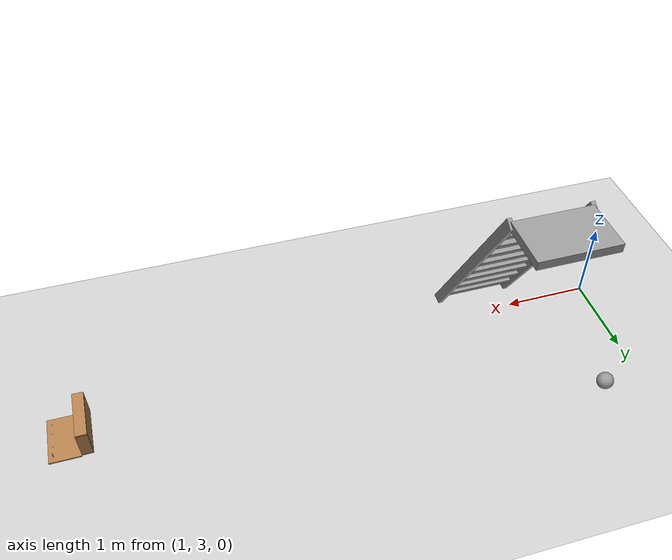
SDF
<sdf version="1.6">
 <world name="default">
  <model name="ground_plane">
   <static>1</static>
   <link name="link">
    <collision name="collision">
     <geometry><plane><normal>0 0 1</normal><size>100 100</size></plane></geometry>
     <surface>
      <contact><collide_bitmask>65535</collide_bitmask></contact>
      <friction><ode><mu>100</mu><mu2>50</mu2></ode></friction>
     </surface>
    </collision>
    <visual name="visual">
     <cast_shadows>0</cast_shadows>
     <geometry><plane><normal>0 0 1</normal><size>100 100</size></plane></geometry>
     <material>
      <script><uri>file://media/materials/scripts/gazebo.material</uri><name>Gazebo/Grey</name></script>
     </material>
    </visual>
   </link>
  </model>
  <model name="my_ball">
   <link name="link_0">
    <inertial>
     <mass>1</mass>
     <inertia><ixx>0.1</ixx><ixy>0</ixy><ixz>0</ixz><iyy>0.1</iyy><iyz>0</iyz><izz>0.1</izz></inertia>
    </inertial>
    <visual name="visual">
     <geometry><sphere><radius>0.1</radius></sphere></geometry>
     <material>
      <lighting>1</lighting>
      <script><uri>file://media/materials/scripts/gazebo.material</uri><name>Gazebo/Grey</name></script>
      <shader type="pixel"><normal_map>__default__</normal_map></shader>
      <ambient>1 1 1 1</ambient>
      <diffuse>1 1 1 1</diffuse>
      <specular>1 1 1 1</specular>
      <emissive>1 1 1 1</emissive>
     </material>
    </visual>
    <collision name="collision">
     <geometry><sphere><radius>0.1</radius></sphere></geometry>
     <surface>
      <friction>
       <ode><mu>1</mu><mu2>1</mu2><fdir1>0 0 0</fdir1><slip1>0</slip1><slip2>0</slip2></ode>
       <torsional>
        <coefficient>1</coefficient>
        <patch_radius>0</patch_radius>
        <surface_radius>0</surface_radius>
        <use_patch_radius>1</use_patch_radius>
        <ode><slip>0</slip></ode>
       </torsional>
      </friction>
      <bounce><restitution_coefficient>0</restitution_coefficient><threshold>1e+06</threshold></bounce>
      <contact>
       <collide_without_contact>0</collide_without_contact>
       <collide_without_contact_bitmask>1</collide_without_contact_bitmask>
       <collide_bitmask>1</collide_bitmask>
       <ode>
        <soft_cfm>0</soft_cfm>
        <soft_erp>0.2</soft_erp>
        <kp>1e+13</kp>
        <kd>1</kd>
        <max_vel>0.01</max_vel>
        <min_depth>0</min_depth>
       </ode>
       <bullet>
        <split_impulse>1</split_impulse>
        <split_impulse_penetration_threshold>-0.01</split_impulse_penetration_threshold>
        <soft_cfm>0</soft_cfm>
        <soft_erp>0.2</soft_erp>
        <kp>1e+13</kp>
        <kd>1</kd>
       </bullet>
      </contact>
     </surface>
    </collision>
   </link>
   <static>0</static>
   <pose>1.48948 4.52073 0.1 0 -0 0</pose>
  </model>
  <model name="wooden_case_metal_peg">
   <link name="wooden_case::base">
    <pose>0 0 0.024 0 -0 0</pose>
    <inertial>
     <pose>-0.022184 0 0.171592 0 -0 0</pose>
     <mass>3.96264</mass>
     <inertia>
      <ixx>0.213536</ixx>
      <ixy>0</ixy>
      <ixz>0.000779377</ixz>
      <iyy>0.0708943</iyy>
      <iyz>0</iyz>
      <izz>0.154604</izz>
     </inertia>
    </inertial>
    <collision name="collision_back">
     <pose>-0.053975 0 0.1778 0 -0 0</pose>
     <geometry><box><size>0.01905 0.5461 0.3175</size></box></geometry>
     <surface>
      <contact>
       <poissons_ratio>0.347</poissons_ratio>
       <elastic_modulus>8.8e+09</elastic_modulus>
       <ode><kp>100000</kp><kd>100</kd><max_vel>100</max_vel><min_depth>0.001</min_depth></ode>
      </contact>
      <friction>
       <torsional>
        <coefficient>1</coefficient>
        <use_patch_radius>0</use_patch_radius>
        <surface_radius>0.01</surface_radius>
       </torsional>
      </friction>
     </surface>
    </collision>
    <visual name="visual_back">
     <pose>-0.053975 0 0.1778 0 -0 0</pose>
     <geometry><box><size>0.01905 0.5461 0.3175</size></box></geometry>
     <material>
      <script><uri>file://media/materials/scripts/gazebo.material</uri><name>Gazebo/Wood</name></script>
     </material>
    </visual>
    <collision name="collision_bottom">
     <pose>0 0 0.009525 0 -0 0</pose>
     <geometry><box><size>0.127 0.5842 0.01905</size></box></geometry>
     <surface>
      <contact>
       <poissons_ratio>0.347</poissons_ratio>
       <elastic_modulus>8.8e+09</elastic_modulus>
       <ode><kp>100000</kp><kd>100</kd><max_vel>100</max_vel><min_depth>0.001</min_depth></ode>
      </contact>
      <friction>
       <torsional>
        <coefficient>1</coefficient>
        <use_patch_radius>0</use_patch_radius>
        <surface_radius>0.01</surface_radius>
       </torsional>
      </friction>
     </surface>
    </collision>
    <visual name="visual_bottom">
     <pose>0 0 0.009525 0 -0 0</pose>
     <geometry><box><size>0.127 0.5842 0.01905</size></box></geometry>
     <material>
      <script><uri>file://media/materials/scripts/gazebo.material</uri><name>Gazebo/Wood</name></script>
     </material>
    </visual>
    <collision name="collision_top">
     <pose>0 0 0.346075 0 -0 0</pose>
     <geometry><box><size>0.127 0.5842 0.01905</size></box></geometry>
     <surface>
      <contact>
       <poissons_ratio>0.347</poissons_ratio>
       <elastic_modulus>8.8e+09</elastic_modulus>
       <ode><kp>100000</kp><kd>100</kd><max_vel>100</max_vel><min_depth>0.001</min_depth></ode>
      </contact>
      <friction>
       <torsional>
        <coefficient>1</coefficient>
        <use_patch_radius>0</use_patch_radius>
        <surface_radius>0.01</surface_radius>
       </torsional>
      </friction>
     </surface>
    </collision>
    <visual name="visual_top">
     <pose>0 0 0.346075 0 -0 0</pose>
     <geometry><box><size>0.127 0.5842 0.01905</size></box></geometry>
     <material>
      <script><uri>file://media/materials/scripts/gazebo.material</uri><name>Gazebo/Wood</name></script>
     </material>
    </visual>
    <collision name="collision_left">
     <pose>0 -0.282575 0.1778 0 -0 0</pose>
     <geometry><box><size>0.127 0.01905 0.3175</size></box></geometry>
     <surface>
      <contact>
       <poissons_ratio>0.347</poissons_ratio>
       <elastic_modulus>8.8e+09</elastic_modulus>
       <ode><kp>100000</kp><kd>100</kd><max_vel>100</max_vel><min_depth>0.001</min_depth></ode>
      </contact>
      <friction>
       <torsional>
        <coefficient>1</coefficient>
        <use_patch_radius>0</use_patch_radius>
        <surface_radius>0.01</surface_radius>
       </torsional>
      </friction>
     </surface>
    </collision>
    <visual name="visual_left">
     <pose>0 -0.282575 0.1778 0 -0 0</pose>
     <geometry><box><size>0.127 0.01905 0.3175</size></box></geometry>
     <material>
      <script><uri>file://media/materials/scripts/gazebo.material</uri><name>Gazebo/Wood</name></script>
     </material>
    </visual>
    <collision name="collision_right">
     <pose>0 0.282575 0.1778 0 -0 0</pose>
     <geometry><box><size>0.127 0.01905 0.3175</size></box></geometry>
     <surface>
      <contact>
       <poissons_ratio>0.347</poissons_ratio>
       <elastic_modulus>8.8e+09</elastic_modulus>
       <ode><kp>100000</kp><kd>100</kd><max_vel>100</max_vel><min_depth>0.001</min_depth></ode>
      </contact>
      <friction>
       <torsional>
        <coefficient>1</coefficient>
        <use_patch_radius>0</use_patch_radius>
        <surface_radius>0.01</surface_radius>
       </torsional>
      </friction>
     </surface>
    </collision>
    <visual name="visual_right">
     <pose>0 0.282575 0.1778 0 -0 0</pose>
     <geometry><box><size>0.127 0.01905 0.3175</size></box></geometry>
     <material>
      <script><uri>file://media/materials/scripts/gazebo.material</uri><name>Gazebo/Wood</name></script>
     </material>
    </visual>
    <collision name="collision_block_left">
     <pose>0.0095 -0.2151 -0.012 0 -0 0</pose>
     <geometry><box><size>0.108 0.05 0.024</size></box></geometry>
     <surface>
      <contact>
       <poissons_ratio>0.347</poissons_ratio>
       <elastic_modulus>8.8e+09</elastic_modulus>
       <ode><kp>100000</kp><kd>100</kd><max_vel>100</max_vel><min_depth>0.001</min_depth></ode>
      </contact>
      <friction>
       <torsional>
        <coefficient>1</coefficient>
        <use_patch_radius>0</use_patch_radius>
        <surface_radius>0.01</surface_radius>
       </torsional>
      </friction>
     </surface>
    </collision>
    <visual name="visual_block_left">
     <pose>0.0095 -0.2151 -0.012 0 -0 0</pose>
     <geometry><box><size>0.108 0.05 0.024</size></box></geometry>
     <material>
      <script><uri>file://media/materials/scripts/gazebo.material</uri><name>Gazebo/Wood</name></script>
     </material>
    </visual>
    <collision name="collision_block_right">
     <pose>0.0095 0.2151 -0.012 0 -0 0</pose>
     <geometry><box><size>0.108 0.05 0.024</size></box></geometry>
     <surface>
      <contact>
       <poissons_ratio>0.347</poissons_ratio>
       <elastic_modulus>8.8e+09</elastic_modulus>
       <ode><kp>100000</kp><kd>100</kd><max_vel>100</max_vel><min_depth>0.001</min_depth></ode>
      </contact>
      <friction>
       <torsional>
        <coefficient>1</coefficient>
        <use_patch_radius>0</use_patch_radius>
        <surface_radius>0.01</surface_radius>
       </torsional>
      </friction>
     </surface>
    </collision>
    <visual name="visual_block_right">
     <pose>0.0095 0.2151 -0.012 0 -0 0</pose>
     <geometry><box><size>0.108 0.05 0.024</size></box></geometry>
     <material>
      <script><uri>file://media/materials/scripts/gazebo.material</uri><name>Gazebo/Wood</name></script>
     </material>
    </visual>
   </link>
   <link name="wooden_case::lid">
    <pose>0.243775 0 0.009525 0 -0 0</pose>
    <inertial>
     <mass>1.97874</mass>
     <inertia>
      <ixx>0.0563367</ixx>
      <ixy>0</ixy>
      <ixz>0</ixz>
      <iyy>0.020911</iyy>
      <iyz>0</iyz>
      <izz>0.0771281</izz>
     </inertia>
    </inertial>
    <collision name="collision">
     <geometry><box><size>0.3556 0.5842 0.01905</size></box></geometry>
     <surface>
      <contact>
       <poissons_ratio>0.347</poissons_ratio>
       <elastic_modulus>8.8e+09</elastic_modulus>
       <ode><kp>100000</kp><kd>100</kd><max_vel>100</max_vel><min_depth>0.001</min_depth></ode>
      </contact>
      <friction>
       <torsional>
        <coefficient>1</coefficient>
        <use_patch_radius>0</use_patch_radius>
        <surface_radius>0.01</surface_radius>
       </torsional>
      </friction>
     </surface>
    </collision>
    <visual name="visual">
     <geometry><box><size>0.3556 0.5842 0.01905</size></box></geometry>
     <material>
      <script><uri>file://media/materials/scripts/gazebo.material</uri><name>Gazebo/Wood</name></script>
     </material>
    </visual>
    <visual name="tee_nut_1">
     <pose>0.122 -0.216 0 0 -0 0</pose>
     <geometry><cylinder><radius>0.00635</radius><length>0.0192405</length></cylinder></geometry>
     <material>
      <script><uri>file://media/materials/scripts/gazebo.material</uri><name>Gazebo/Grey</name></script>
     </material>
    </visual>
    <visual name="tee_nut_2">
     <pose>0.122 -0.088 0 0 -0 0</pose>
     <geometry><cylinder><radius>0.00635</radius><length>0.0192405</length></cylinder></geometry>
     <material>
      <script><uri>file://media/materials/scripts/gazebo.material</uri><name>Gazebo/Grey</name></script>
     </material>
    </visual>
    <visual name="tee_nut_3">
     <pose>0.122 0.088 0 0 -0 0</pose>
     <geometry><cylinder><radius>0.00635</radius><length>0.0192405</length></cylinder></geometry>
     <material>
      <script><uri>file://media/materials/scripts/gazebo.material</uri><name>Gazebo/Grey</name></script>
     </material>
    </visual>
    <visual name="tee_nut_4">
     <pose>0.122 0.216 0 0 -0 0</pose>
     <geometry><cylinder><radius>0.00635</radius><length>0.0192405</length></cylinder></geometry>
     <material>
      <script><uri>file://media/materials/scripts/gazebo.material</uri><name>Gazebo/Grey</name></script>
     </material>
    </visual>
   </link>
   <joint name="wooden_case::lid_hinge" type="revolute">
    <pose>-0.1778 0 0.01905 0 -0 0</pose>
    <parent>wooden_case::base</parent>
    <child>wooden_case::lid</child>
    <axis>
     <xyz>0 1 0</xyz>
     <limit><upper>0.523599</upper><lower>-1.5708</lower></limit>
     <use_parent_model_frame>0</use_parent_model_frame>
     <dynamics><spring_reference>0</spring_reference><spring_stiffness>0</spring_stiffness></dynamics>
    </axis>
   </joint>
   <link name="peg::link">
    <pose>0.365774 0.216 0.05005 0 -0 0</pose>
    <inertial>
     <mass>0.0121</mass>
     <inertia>
      <ixx>3.90898e-06</ixx>
      <ixy>0</ixy>
      <ixz>0</ixz>
      <iyy>3.90898e-06</iyy>
      <iyz>0</iyz>
      <izz>6.58845e-08</izz>
     </inertia>
    </inertial>
    <collision name="collision">
     <geometry><cylinder><radius>0.0033</radius><length>0.062</length></cylinder></geometry>
     <surface>
      <contact>
       <poissons_ratio>0.305</poissons_ratio>
       <elastic_modulus>2e+11</elastic_modulus>
       <ode><kp>100000</kp><kd>100</kd><max_vel>100</max_vel><min_depth>0.001</min_depth></ode>
      </contact>
      <friction>
       <torsional>
        <coefficient>1</coefficient>
        <use_patch_radius>0</use_patch_radius>
        <surface_radius>0.01</surface_radius>
       </torsional>
      </friction>
     </surface>
    </collision>
    <visual name="visual">
     <geometry><cylinder><radius>0.0033</radius><length>0.062</length></cylinder></geometry>
     <material>
      <script><uri>file://media/materials/scripts/gazebo.material</uri><name>Gazebo/Grey</name></script>
     </material>
    </visual>
   </link>
   <joint name="case_peg" type="revolute">
    <child>peg::link</child>
    <parent>wooden_case::lid</parent>
    <axis>
     <xyz>0 0 1</xyz>
     <limit><upper>0</upper><lower>0</lower></limit>
     <use_parent_model_frame>0</use_parent_model_frame>
     <dynamics><spring_reference>0</spring_reference><spring_stiffness>0</spring_stiffness></dynamics>
    </axis>
   </joint>
   <pose>7.34508 3.49134 -0.001057 0 -0.000427 1e-06</pose>
  </model>
  <model name="ladder_60deg_0rails">
   <static>1</static>
   <link name="step0">
    <pose>0 0.15396 0.266667 0 -0 0</pose>
    <inertial>
     <mass>9.75482</mass>
     <inertia>
      <ixx>0.00957124</ixx>
      <iyy>0.65963</iyy>
      <izz>0.666842</izz>
      <ixy>0</ixy>
      <ixz>0</ixz>
      <iyz>0</iyz>
     </inertia>
    </inertial>
    <collision name="collision"><geometry><box><size>0.9 0.1016 0.0381</size></box></geometry></collision>
    <visual name="visual">
     <geometry><box><size>0.9 0.1016 0.0381</size></box></geometry>
     <material>
      <script><uri>file://media/materials/scripts/gazebo.material</uri><name>Gazebo/Grey</name></script>
     </material>
    </visual>
   </link>
   <link name="step1">
    <pose>0 0.30792 0.533333 0 -0 0</pose>
    <inertial>
     <mass>9.75482</mass>
     <inertia>
      <ixx>0.00957124</ixx>
      <iyy>0.65963</iyy>
      <izz>0.666842</izz>
      <ixy>0</ixy>
      <ixz>0</ixz>
      <iyz>0</iyz>
     </inertia>
    </inertial>
    <collision name="collision"><geometry><box><size>0.9 0.1016 0.0381</size></box></geometry></collision>
    <visual name="visual">
     <geometry><box><size>0.9 0.1016 0.0381</size></box></geometry>
     <material>
      <script><uri>file://media/materials/scripts/gazebo.material</uri><name>Gazebo/Grey</name></script>
     </material>
    </visual>
   </link>
   <link name="step2">
    <pose>0 0.46188 0.8 0 -0 0</pose>
    <inertial>
     <mass>9.75482</mass>
     <inertia>
      <ixx>0.00957124</ixx>
      <iyy>0.65963</iyy>
      <izz>0.666842</izz>
      <ixy>0</ixy>
      <ixz>0</ixz>
      <iyz>0</iyz>
     </inertia>
    </inertial>
    <collision name="collision"><geometry><box><size>0.9 0.1016 0.0381</size></box></geometry></collision>
    <visual name="visual">
     <geometry><box><size>0.9 0.1016 0.0381</size></box></geometry>
     <material>
      <script><uri>file://media/materials/scripts/gazebo.material</uri><name>Gazebo/Grey</name></script>
     </material>
    </visual>
   </link>
   <link name="step3">
    <pose>0 0.61584 1.06667 0 -0 0</pose>
    <inertial>
     <mass>9.75482</mass>
     <inertia>
      <ixx>0.00957124</ixx>
      <iyy>0.65963</iyy>
      <izz>0.666842</izz>
      <ixy>0</ixy>
      <ixz>0</ixz>
      <iyz>0</iyz>
     </inertia>
    </inertial>
    <collision name="collision"><geometry><box><size>0.9 0.1016 0.0381</size></box></geometry></collision>
    <visual name="visual">
     <geometry><box><size>0.9 0.1016 0.0381</size></box></geometry>
     <material>
      <script><uri>file://media/materials/scripts/gazebo.material</uri><name>Gazebo/Grey</name></script>
     </material>
    </visual>
   </link>
   <link name="step4">
    <pose>0 0.7698 1.33333 0 -0 0</pose>
    <inertial>
     <mass>9.75482</mass>
     <inertia>
      <ixx>0.00957124</ixx>
      <iyy>0.65963</iyy>
      <izz>0.666842</izz>
      <ixy>0</ixy>
      <ixz>0</ixz>
      <iyz>0</iyz>
     </inertia>
    </inertial>
    <collision name="collision"><geometry><box><size>0.9 0.1016 0.0381</size></box></geometry></collision>
    <visual name="visual">
     <geometry><box><size>0.9 0.1016 0.0381</size></box></geometry>
     <material>
      <script><uri>file://media/materials/scripts/gazebo.material</uri><name>Gazebo/Grey</name></script>
     </material>
    </visual>
   </link>
   <link name="step5">
    <pose>0 0.92376 1.6 0 -0 0</pose>
    <inertial>
     <mass>9.75482</mass>
     <inertia>
      <ixx>0.00957124</ixx>
      <iyy>0.65963</iyy>
      <izz>0.666842</izz>
      <ixy>0</ixy>
      <ixz>0</ixz>
      <iyz>0</iyz>
     </inertia>
    </inertial>
    <collision name="collision"><geometry><box><size>0.9 0.1016 0.0381</size></box></geometry></collision>
    <visual name="visual">
     <geometry><box><size>0.9 0.1016 0.0381</size></box></geometry>
     <material>
      <script><uri>file://media/materials/scripts/gazebo.material</uri><name>Gazebo/Grey</name></script>
     </material>
    </visual>
   </link>
   <link name="step6">
    <pose>0 1.07772 1.86667 0 -0 0</pose>
    <inertial>
     <mass>9.75482</mass>
     <inertia>
      <ixx>0.00957124</ixx>
      <iyy>0.65963</iyy>
      <izz>0.666842</izz>
      <ixy>0</ixy>
      <ixz>0</ixz>
      <iyz>0</iyz>
     </inertia>
    </inertial>
    <collision name="collision"><geometry><box><size>0.9 0.1016 0.0381</size></box></geometry></collision>
    <visual name="visual">
     <geometry><box><size>0.9 0.1016 0.0381</size></box></geometry>
     <material>
      <script><uri>file://media/materials/scripts/gazebo.material</uri><name>Gazebo/Grey</name></script>
     </material>
    </visual>
   </link>
   <link name="step7">
    <pose>0 1.23168 2.13333 0 -0 0</pose>
    <inertial>
     <mass>9.75482</mass>
     <inertia>
      <ixx>0.00957124</ixx>
      <iyy>0.65963</iyy>
      <izz>0.666842</izz>
      <ixy>0</ixy>
      <ixz>0</ixz>
      <iyz>0</iyz>
     </inertia>
    </inertial>
    <collision name="collision"><geometry><box><size>0.9 0.1016 0.0381</size></box></geometry></collision>
    <visual name="visual">
     <geometry><box><size>0.9 0.1016 0.0381</size></box></geometry>
     <material>
      <script><uri>file://media/materials/scripts/gazebo.material</uri><name>Gazebo/Grey</name></script>
     </material>
    </visual>
   </link>
   <link name="landing">
    <pose>0 1.68564 2.4 0 -0 0</pose>
    <inertial>
     <mass>57.6072</mass>
     <inertia><ixx>1.73518</ixx><iyy>3.89545</iyy><izz>5.6167</izz><ixy>0</ixy><ixz>0</ixz><iyz>0</iyz></inertia>
    </inertial>
    <collision name="collision"><geometry><box><size>0.9 0.6 0.1016</size></box></geometry></collision>
    <visual name="visual">
     <geometry><box><size>0.9 0.6 0.1016</size></box></geometry>
     <material>
      <script><uri>file://media/materials/scripts/gazebo.material</uri><name>Gazebo/Grey</name></script>
     </material>
    </visual>
   </link>
   <link name="left_side_wall">
    <pose>-0.45 0.69282 1.2 1.0472 -0 0</pose>
    <collision name="collision"><geometry><box><size>0.0508 2.85128 0.13</size></box></geometry></collision>
    <visual name="visual">
     <geometry><box><size>0.0508 2.85128 0.13</size></box></geometry>
     <material>
      <script><uri>file://media/materials/scripts/gazebo.material</uri><name>Gazebo/Grey</name></script>
     </material>
    </visual>
   </link>
   <link name="right_side_wall">
    <pose>0.45 0.69282 1.2 1.0472 -0 0</pose>
    <collision name="collision"><geometry><box><size>0.0508 2.85128 0.13</size></box></geometry></collision>
    <visual name="visual">
     <geometry><box><size>0.0508 2.85128 0.13</size></box></geometry>
     <material>
      <script><uri>file://media/materials/scripts/gazebo.material</uri><name>Gazebo/Grey</name></script>
     </material>
    </visual>
   </link>
   <pose>2.38058 2.64146 0 0 -0 0</pose>
  </model>
 </world>
</sdf>
